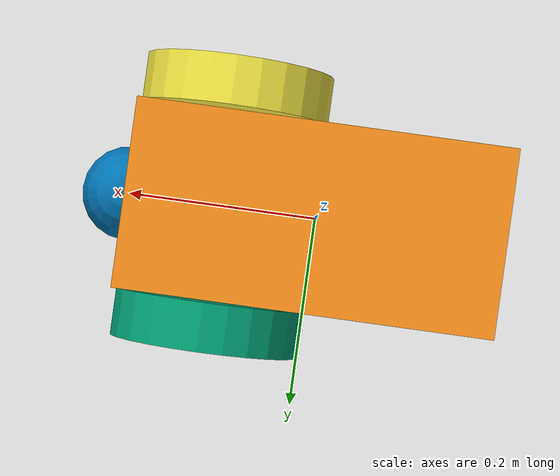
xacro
<?xml version='1.0'?>

<robot name="navibot" xmlns:xacro="http://www.ros.org/wiki/xacro">

  <xacro:property name="cameraSize" value="0.05"/>
  <xacro:property name="cameraMass" value="0.1"/>
  <xacro:property name="laserSize" value="0.05"/>
  <xacro:property name="laserMass" value="0.1"/>

  <xacro:include filename="$(find navibot_description)/urdf/navibot.gazebo" />
  <xacro:include filename="$(find navibot_description)/urdf/materials.xacro" />
  <xacro:include filename="$(find navibot_description)/urdf/macros.xacro" />

  <link name='chassis'>
    <pose>0 0 0.0 0 0 0</pose>

    <inertial>
      <mass value="10.0"/>
      <origin xyz="0.0 0 0.0" rpy=" 0 0 0"/>
      <inertia
          ixx="0.5" ixy="0" ixz="0"
          iyy="1.0" iyz="0"
          izz="0.1"
      />
    </inertial>

    <collision name='chassis_collision'>
      <geometry>
        <box size=".4 .2 .1"/>
      </geometry>
    </collision>

    <visual name='chassis_visual'>
      <origin xyz="0 0 0" rpy=" 0 0 0"/>
      <geometry>
        <box size=".4 .2 .1"/>
      </geometry>
    </visual>
  </link>

  <link name='caster'>
    <inertial>
      <mass value="1.0"/>
      <origin xyz="0 0 0" rpy=" 0 0 0"/>
      <inertia
          ixx="0.01" ixy="0" ixz="0"
          iyy="0.01" iyz="0"
          izz="0.01"
      />
    </inertial>
    <collision name='caster_collision'>
      <origin xyz="0 0 0" rpy=" 0 0 0"/>
      <geometry>
        <sphere radius="0.035"/>
      </geometry>
      <surface>
        <friction>
          <ode>
            <mu>0</mu>
            <mu2>0</mu2>
            <slip1>1.0</slip1>
            <slip2>1.0</slip2>
          </ode>
        </friction>
      </surface>
    </collision>

    <visual name='caster_visual'>
      <origin xyz="0 0 0" rpy=" 0 0 0"/>
      <geometry>
        <sphere radius="0.035"/>
      </geometry>
    </visual>
  </link>

  <joint type="continuous" name="chassis_caster">
    <origin xyz="-0.15 0 -0.05" rpy="0 0 0"/>
    <child link="caster"/>
    <parent link="chassis"/>
    <axis xyz="0 1 0" rpy="0 0 0"/>
    <joint_properties damping="0.0" friction="0.0"/>
    <joint_properties damping="0.0" friction="0.0"/>
  </joint>

  <link name="left_wheel">
    <!--origin xyz="0.1 0.13 0.1" rpy="0 1.5707 1.5707"/-->
    <collision name="left_wheel_collision">
      <origin xyz="0 0 0" rpy="0 1.5707 1.5707"/>
      <geometry>
        <cylinder radius="0.1" length="0.05"/>
      </geometry>
    </collision>
    <visual name="left_wheel_visual">
      <origin xyz="0 0 0" rpy="0 1.5707 1.5707"/>
      <geometry>
        <cylinder radius="0.1" length="0.05"/>
      </geometry>
    </visual>
    <inertial>
      <origin xyz="0 0 0" rpy="0 1.5707 1.5707"/>
      <mass value="2"/>
      <cylinder_inertia m="2" r="0.1" h="0.05"/>
      <inertia
        ixx="1.0" ixy="0.0" ixz="0.0"
        iyy="1.0" iyz="0.0"
        izz="1.0"/>
    </inertial>
  </link>

  <link name="right_wheel">
    <!--origin xyz="0.1 -0.13 0.1" rpy="0 1.5707 1.5707"/-->
    <collision name="right_wheel_collision">
      <origin xyz="0 0 0" rpy="0 1.5707 1.5707"/>
      <geometry>
        <cylinder radius="0.1" length="0.05"/>
      </geometry>
    </collision>
    <visual name="right_wheel_visual">
      <origin xyz="0 0 0" rpy="0 1.5707 1.5707"/>
      <geometry>
        <cylinder radius="0.1" length="0.05"/>
      </geometry>
    </visual>
    <inertial>
      <origin xyz="0 0 0" rpy="0 1.5707 1.5707"/>
      <mass value="2"/>
      <cylinder_inertia m="2" r="0.1" h="0.05"/>
      <inertia
        ixx="1.0" ixy="0.0" ixz="0.0"
        iyy="1.0" iyz="0.0"
        izz="1.0"/>
    </inertial>
  </link>

  <joint type="continuous" name="left_wheel_hinge">
    <origin xyz="0.1 0.125 0" rpy="0 0 0"/>
    <child link="left_wheel"/>
    <parent link="chassis"/>
    <axis xyz="0 1 0" rpy="0 0 0"/>
    <limit effort="100" velocity="100"/>
    <joint_properties damping="0.0" friction="0.0"/>
  </joint>

  <joint type="continuous" name="right_wheel_hinge">
    <origin xyz="0.1 -0.125 0" rpy="0 0 0"/>
    <child link="right_wheel"/>
    <parent link="chassis"/>
    <axis xyz="0 1 0" rpy="0 0 0"/>
    <limit effort="100" velocity="100"/>
    <joint_properties damping="0.0" friction="0.0"/>
  </joint>

  <joint name="hokuyo_joint" type="fixed">
    <axis xyz="0 1 0" />
    <origin xyz=".2 0 0" rpy="0 0 0"/>
    <parent link="chassis"/>
    <child link="hokuyo"/>
  </joint>

  <!-- Hokuyo Laser -->
  <link name="hokuyo">
    <collision name="hokuyo_collision">
      <origin xyz="0 0 0" rpy="0 0 0"/>
      <geometry>
        <sphere radius="0.05"/>
      </geometry>
    </collision>

    <visual>
      <origin xyz="0 0 0" rpy="0 0 0"/>
      <geometry>
        <sphere radius="0.05"/>
      </geometry>
    </visual>

    <inertial>
      <mass value="1e-5" />
      <origin xyz="0 0 0" rpy="0 0 0"/>
      <inertia ixx="1e-6" ixy="0" ixz="0" iyy="1e-6" iyz="0" izz="1e-6" />
    </inertial>
  </link>

  <transmission name="trans_left_wheel">
    <type>transmission_interface/SimpleTransmission</type>
    <joint name="left_wheel_hinge">
      <hardwareInterface>hardware_interface/EffortJointInterface</hardwareInterface>
    </joint>
    <actuator name="motor_left_wheel">
      <hardwareInterface>hardware_interface/EffortJointInterface</hardwareInterface>
      <mechanicalReduction>1</mechanicalReduction>
    </actuator>
  </transmission>

  <transmission name="trans_right_wheel">
    <type>transmission_interface/SimpleTransmission</type>
    <joint name="right_wheel_hinge">
      <hardwareInterface>hardware_interface/EffortJointInterface</hardwareInterface>
    </joint>
    <actuator name="motor_right_wheel">
      <hardwareInterface>hardware_interface/EffortJointInterface</hardwareInterface>
      <mechanicalReduction>1</mechanicalReduction>
    </actuator>
  </transmission>

</robot>
